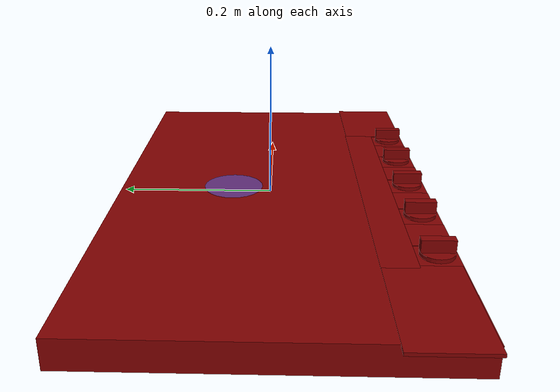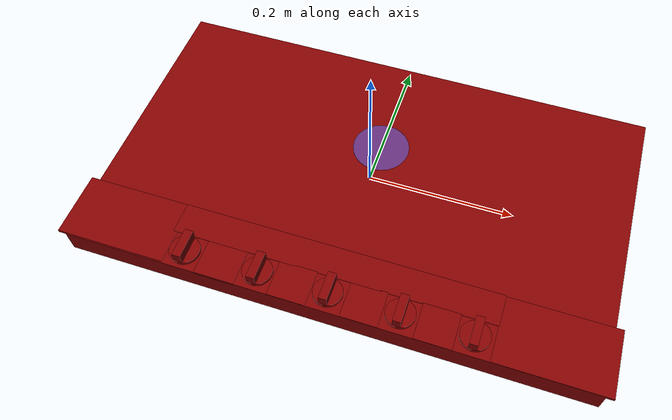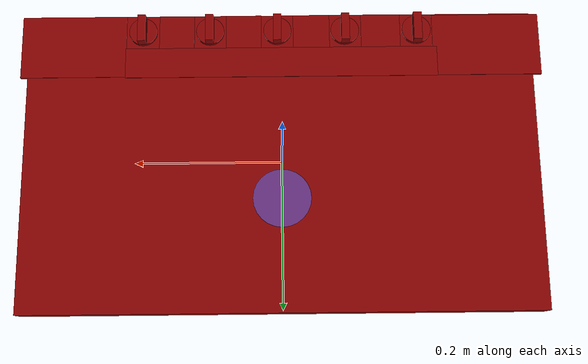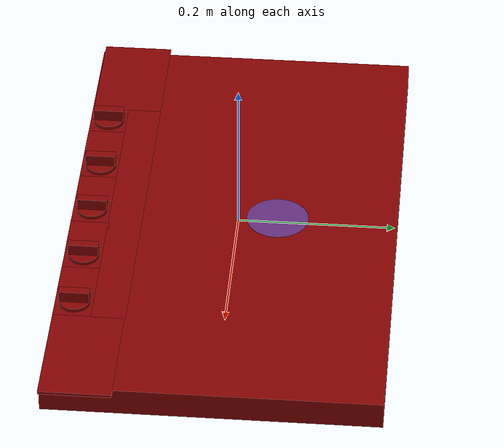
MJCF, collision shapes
<?xml version='1.0' encoding='UTF-8'?>
<mujoco model="model">
  <compiler angle="radian"/>
  <asset>
    <mesh file="visuals/knob_center.obj" name="knob_center_vis"/>
    <mesh file="visuals/knob_front_left.obj" name="knob_front_left_vis"/>
    <mesh file="visuals/knob_front_right.obj" name="knob_front_right_vis"/>
    <mesh file="visuals/knob_rear_left.obj" name="knob_rear_left_vis"/>
    <mesh file="visuals/knob_rear_right.obj" name="knob_rear_right_vis"/>
    <mesh file="visuals/Body001.obj" name="Body001_vis"/>
    <mesh file="visuals/Body002.obj" name="Body002_vis"/>
    <texture file="visuals/T_BC001.png" name="Body001_material" type="2d"/>
    <material name="Body001_material" rgba="1 1 1 1.0" texture="Body001_material" shininess="0.4472135901451111" specular="3"/>
    <texture file="visuals/T_BC001.png" name="knob_center_material" type="2d"/>
    <material name="knob_center_material" rgba="1 1 1 1.0" texture="knob_center_material" shininess="0.4472135901451111" specular="1"/>
    <texture file="visuals/T_BC001.png" name="knob_front_left_material" type="2d"/>
    <material name="knob_front_left_material" rgba="1 1 1 1.0" texture="knob_front_left_material" shininess="0.4472135901451111" specular="1"/>
    <texture file="visuals/T_BC001.png" name="knob_front_right_material" type="2d"/>
    <material name="knob_front_right_material" rgba="1 1 1 1.0" texture="knob_front_right_material" shininess="0.4472135901451111" specular="1"/>
    <texture file="visuals/T_BC001.png" name="knob_rear_left_material" type="2d"/>
    <material name="knob_rear_left_material" rgba="1 1 1 1.0" texture="knob_rear_left_material" shininess="0.4472135901451111" specular="1"/>
    <texture file="visuals/T_BC001.png" name="knob_rear_right_material" type="2d"/>
    <material name="knob_rear_right_material" rgba="1 1 1 1.0" texture="knob_rear_right_material" shininess="0.4472135901451111" specular="1"/>
    <texture file="visuals/T_BC001.png" name="Body002_material" type="2d"/>
    <material name="Body002_material" rgba="1 1 1 1.0" texture="Body002_material" shininess="0.4472135901451111" specular="5"/>
  </asset>
  <default>
    <default class="visual">
      <geom conaffinity="0" contype="0" group="1" type="mesh"/>
    </default>
    <default class="collision">
      <geom group="0" rgba="0.5 0 0 0.5"/>
    </default>
    <default class="spawn">
      <geom group="0" rgba="1 1 1 0.5" contype="0" conaffinity="0"/>
      <site group="0" rgba="1 1 1 0.5"/>
    </default>
    <default class="region">
      <geom group="1" conaffinity="0" contype="0" rgba="0 1 0 0"/>
    </default>
  </default>
  <worldbody>
    <body>
      <body name="object">
        <site type="cylinder" rgba="0.3 0.4 1 0.5" size="0.03971847891807556 0.0026724718045443296" pos="0.000282 0.050622 0.004721" name="burner_on_center"/>
        <site type="cylinder" rgba="0.3 0.4 1 0.5" size="0.02907802164554596 0.0028289109468460083" pos="-0.229425 -0.066910 -0.002340" name="burner_on_front_left"/>
        <site type="cylinder" rgba="0.3 0.4 1 0.5" size="0.02907802164554596 0.0022845834027975798" pos="-0.229425 0.089983 -0.002580" name="burner_on_rear_left"/>
        <site type="cylinder" rgba="0.3 0.4 1 0.5" size="0.022008158266544342 0.0015378475654870272" pos="0.228963 0.089780 -0.006863" name="burner_on_rear_right"/>
        <site type="cylinder" rgba="0.3 0.4 1 0.5" size="0.03311452642083168 0.0023280151654034853" pos="0.229166 -0.066910 -0.001730" name="burner_on_front_right"/>
        <geom mesh="Body001_vis" type="mesh" solimp="0.998 0.998 0.001" solref="0.001 1" density="100" friction="0.95 0.3 0.1" class="visual" material="Body001_material"/>
        <geom class="collision" type="box" pos="-0.288136 -0.166382 0.005370" size="0.0751245766878128 0.04443773999810219 0.0019045202061533928" quat="1.0 0.0 0.0 0.0"/>
        <geom class="collision" type="box" pos="0.289992 -0.167471 0.005331" size="0.07326879352331161 0.04469894990324974 0.0019430917454883456" quat="1.0 0.0 0.0 0.0"/>
        <geom class="collision" type="box" pos="0.001065 -0.004342 -0.011048" size="0.3523796498775482 0.20782798528671265 0.017709948122501373" quat="1.0 0.0 0.0 0.0"/>
        <geom class="collision" type="box" pos="0.146121 -0.187612 0.005668" size="0.024549225345253944 0.024557819589972496 0.001606714678928256" quat="1.0 0.0 0.0 0.0"/>
        <geom class="collision" type="box" pos="0.052259 -0.187612 0.005668" size="0.024549225345253944 0.024557825177907944 0.0016066848766058683" quat="1.0 0.0 0.0 0.0"/>
        <geom class="collision" type="box" pos="-0.042845 -0.187612 0.005668" size="0.025561736896634102 0.02455783076584339 0.0016066852258518338" quat="1.0 0.0 0.0 0.0"/>
        <geom class="collision" type="box" pos="-0.140434 -0.187612 0.005668" size="0.027516139671206474 0.02455807849764824 0.001606715377420187" quat="1.0 0.0 0.0 0.0"/>
        <geom class="collision" type="box" pos="-0.000542 -0.143056 0.006360" size="0.21817293763160706 0.021450063213706017 0.0009147481177933514" quat="1.0 0.0 0.0 0.0"/>
        <body name="knob_center">
          <joint axis="0.0 0.0 1.0" pos="0.004111 -0.187591 0.014754" limited="true" name="knob_center_joint" range="0.0 3.490658503988659" type="hinge" damping="0.05" armature="0.001"/>
          <geom mesh="knob_center_vis" type="mesh" solimp="0.998 0.998 0.001" solref="0.001 1" density="100" friction="0.95 0.3 0.1" class="visual" material="knob_center_material"/>
          <geom class="collision" type="cylinder" pos="0.004803 -0.187583 0.010908" size="0.019496535882353783 0.002368065295740962" quat="1.0 0.0 0.0 0.0"/>
          <geom class="collision" type="box" pos="0.004798 -0.187072 0.020896" size="0.0055315857753157616 0.018967404961586 0.007450352888554335" quat="1.0 0.0 0.0 0.0"/>
        </body>
        <body name="knob_front_left">
          <joint axis="0.0 0.0 1.0" pos="-0.189641 -0.187624 0.014760" limited="true" name="knob_front_left_joint" range="0.0 3.490658503988659" type="hinge" damping="0.05" armature="0.001"/>
          <geom mesh="knob_front_left_vis" type="mesh" solimp="0.998 0.998 0.001" solref="0.001 1" density="100" friction="0.95 0.3 0.1" class="visual" material="knob_front_left_material"/>
          <geom class="collision" type="cylinder" pos="-0.190240 -0.187735 0.010743" size="0.020140523090958595 0.002446284517645836" quat="1.0 0.0 0.0 0.0"/>
          <geom class="collision" type="box" pos="-0.190196 -0.187508 0.021061" size="0.005714252591133118 0.019593756645917892 0.007696310058236122" quat="1.0 0.0 0.0 0.0"/>
        </body>
        <body name="knob_front_right">
          <joint axis="0.0 0.0 1.0" pos="0.192704 -0.187533 0.014751" limited="true" name="knob_front_right_joint" range="0.0 3.490658503988659" type="hinge" damping="0.05" armature="0.001"/>
          <geom mesh="knob_front_right_vis" type="mesh" solimp="0.998 0.998 0.001" solref="0.001 1" density="100" friction="0.95 0.3 0.1" class="visual" material="knob_front_right_material"/>
          <geom class="collision" type="cylinder" pos="0.192672 -0.187421 0.010902" size="0.019521916285157204 0.0023711479734629393" quat="1.0 0.0 0.0 0.0"/>
          <geom class="collision" type="box" pos="0.193185 -0.187498 0.020903" size="0.0055387429893016815 0.018991945311427116 0.007459922228008509" quat="1.0 0.0 0.0 0.0"/>
        </body>
        <body name="knob_rear_left">
          <joint axis="0.0 0.0 1.0" pos="-0.089955 -0.187549 0.014752" limited="true" name="knob_rear_left_joint" range="0.0 3.490658503988659" type="hinge" damping="0.05" armature="0.001"/>
          <geom mesh="knob_rear_left_vis" type="mesh" solimp="0.998 0.998 0.001" solref="0.001 1" density="100" friction="0.95 0.3 0.1" class="visual" material="knob_rear_left_material"/>
          <geom class="collision" type="cylinder" pos="-0.089811 -0.187208 0.010834" size="0.019788820296525955 0.0024035663809627295" quat="1.0 0.0 0.0 0.0"/>
          <geom class="collision" type="box" pos="-0.089852 -0.187194 0.020971" size="0.005614469293504953 0.019251607358455658 0.0075619155541062355" quat="1.0 0.0 0.0 0.0"/>
        </body>
        <body name="knob_rear_right">
          <joint axis="0.0 0.0 1.0" pos="0.098888 -0.187509 0.014753" limited="true" name="knob_rear_right_joint" range="0.0 3.490658503988659" type="hinge" damping="0.05" armature="0.001"/>
          <geom mesh="knob_rear_right_vis" type="mesh" solimp="0.998 0.998 0.001" solref="0.001 1" density="100" friction="0.95 0.3 0.1" class="visual" material="knob_rear_right_material"/>
          <geom class="collision" type="cylinder" pos="0.099014 -0.187288 0.010915" size="0.019472436979413033 0.0023651381488889456" quat="1.0 0.0 0.0 0.0"/>
          <geom class="collision" type="box" pos="0.099159 -0.187447 0.020890" size="0.005524749401956797 0.01894395798444748 0.007441017311066389" quat="1.0 0.0 0.0 0.0"/>
        </body>
        <body name="Body002">
          <geom mesh="Body002_vis" type="mesh" solimp="0.998 0.998 0.001" solref="0.001 1" density="100" friction="0.95 0.3 0.1" class="visual" material="Body002_material"/>
        </body>
        <geom class="region" name="reg_main" type="box" pos="0.0 5.000000000005e-07 -0.0107415" size="0.36326 0.21217049999999998 0.018016499999999998"/>
      </body>
    </body>
  </worldbody>
  <actuator>
    <motor name="knob_center_joint_actuator" joint="knob_center_joint" gear="10"/>
    <motor name="knob_front_left_joint_actuator" joint="knob_front_left_joint" gear="10"/>
    <motor name="knob_front_right_joint_actuator" joint="knob_front_right_joint" gear="10"/>
    <motor name="knob_rear_left_joint_actuator" joint="knob_rear_left_joint" gear="10"/>
    <motor name="knob_rear_right_joint_actuator" joint="knob_rear_right_joint" gear="10"/>
  </actuator>
</mujoco>
